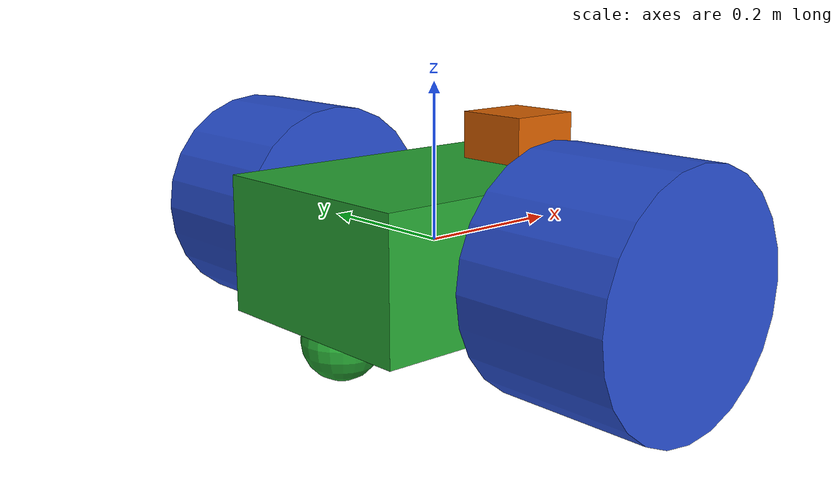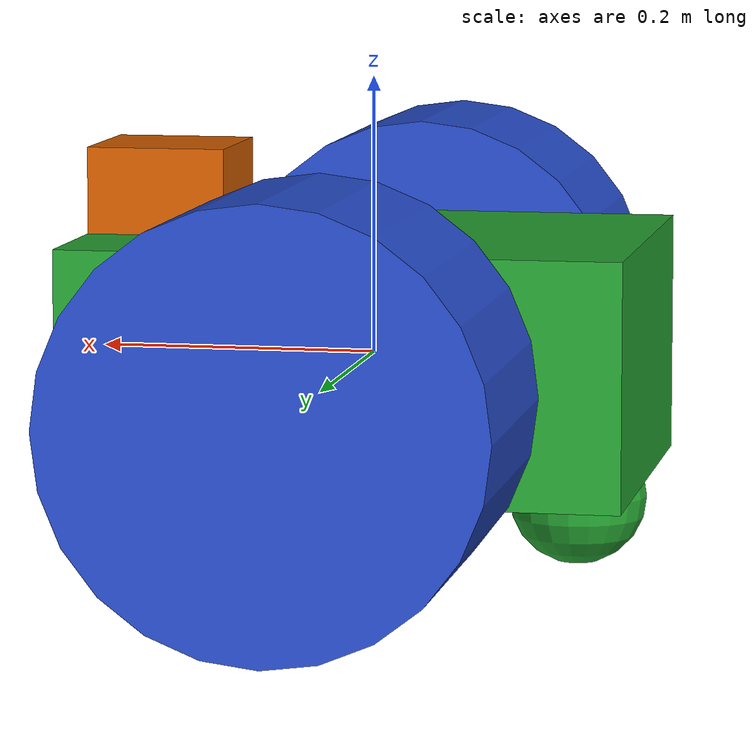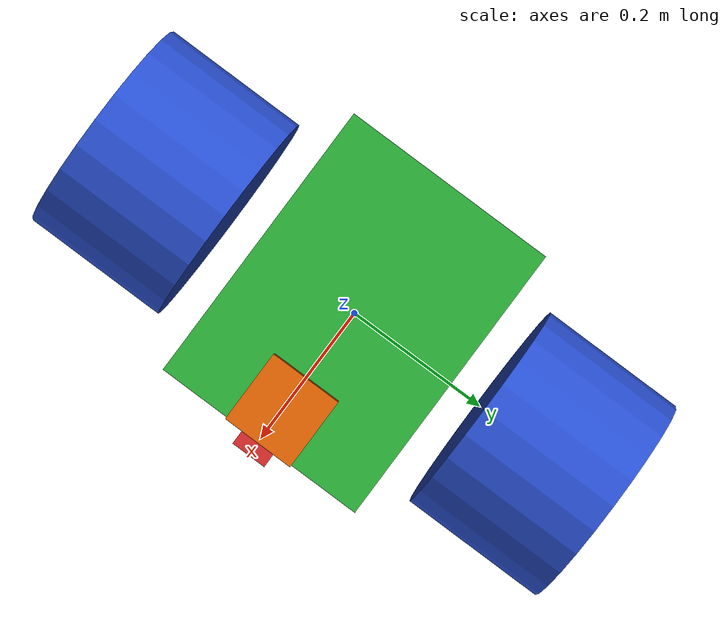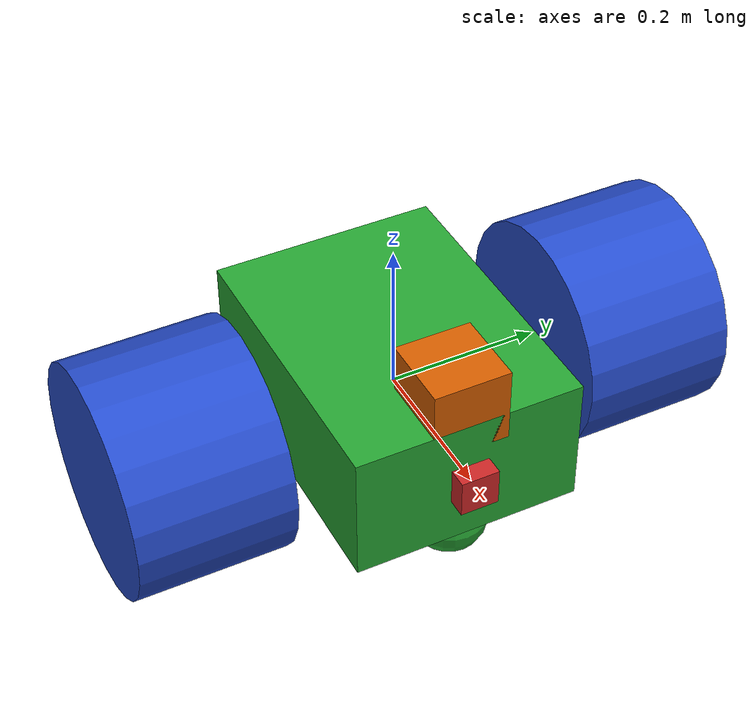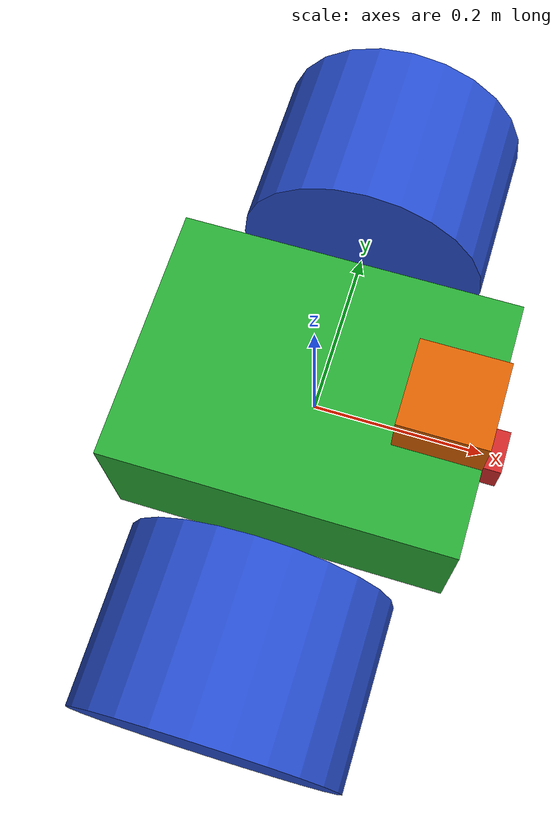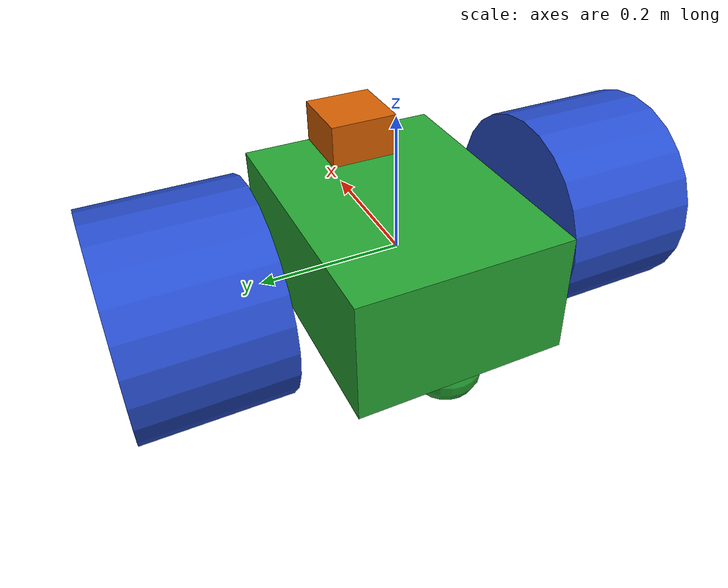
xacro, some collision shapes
<robot name="my_robot" xmlns:xacro="http://www.ros.org/wiki/xacro">
<xacro:include filename="$(find my_robot)/urdf/my_robot.gazebo" />

  <link name="robot_footprint"></link>

  <joint name="robot_footprint_joint" type="fixed">
    <origin xyz="0 0 0" rpy="0 0 0" />
    <parent link="robot_footprint"/>
    <child link="chassis" />
  </joint>

  <!-- Chassis Link -->
  <link name='chassis'>
    <pose>0 0 0.1 0 0 0</pose>

    <inertial>
      <mass value="15.0"/>
      <origin xyz="0.0 0 0" rpy=" 0 0 0"/>
      <inertia
          ixx="0.1" ixy="0" ixz="0"
          iyy="0.1" iyz="0"
          izz="0.1"
      />
    </inertial>

    <collision name='collision'>
      <origin xyz="0 0 0" rpy=" 0 0 0"/>
      <geometry>
        <box size=".4 .3 .175"/>
      </geometry>
    </collision>

    <visual name='chassis_visual'>
      <origin xyz="0 0 0" rpy=" 0 0 0"/>
      <geometry>
        <box size=".4 .3 .175"/>
      </geometry>
    </visual>

    <collision name='back_caster_collision'>
      <origin xyz="-0.15 0 -0.1" rpy=" 0 0 0"/>
      <geometry>
        <sphere radius="0.0499"/>
      </geometry>
    </collision>

    <visual name='back_caster_visual'>
      <origin xyz="-0.15 0 -0.1" rpy=" 0 0 0"/>
      <geometry>
        <sphere radius="0.05"/>
      </geometry>
    </visual>

    <collision name='front_caster_collision'>
      <origin xyz="0.15 0 -0.1" rpy=" 0 0 0"/>
      <geometry>
        <sphere radius="0.0499"/>
      </geometry>
    </collision>

    <visual name='front_caster_visual'>
      <origin xyz="0.15 0 -0.1" rpy=" 0 0 0"/>
      <geometry>
        <sphere radius="0.05"/>
      </geometry>
    </visual>

  </link>
  <gazebo reference="chassis">
    <material>Gazebo/Green</material>
  </gazebo>

  <!-- Left Wheel Joint -->
  <joint type="continuous" name="left_wheel_hinge">
    <origin xyz="0 0.30 0" rpy="0 0 0"/>
    <child link="left_wheel"/>
    <parent link="chassis"/>
    <axis xyz="0 1 0" rpy="0 0 0"/>
    <limit effort="10000" velocity="1000"/>
    <dynamics damping="1.0" friction="1.0"/>
  </joint>

  <!-- Left Wheel Link -->
  <link name='left_wheel'>
    <inertial>
      <mass value="5.0"/>
      <origin xyz="0.0 0 0" rpy=" 0 1.57 1.57"/>
      <inertia
          ixx="0.1" ixy="0" ixz="0"
          iyy="0.1" iyz="0"
          izz="0.1"
      />
    </inertial>

    <collision name='collision'>
      <origin xyz="0 0 0" rpy=" 0 1.57 1.57"/>
      <geometry>
        <cylinder radius='0.15' length='0.2'/>
      </geometry>
    </collision>

    <visual name='left_wheel_visual'>
      <origin xyz="0 0 0" rpy=" 0 1.57 1.57"/>
      <geometry>
        <cylinder radius='0.15' length='0.2'/>
      </geometry>
    </visual>

  </link>
  <gazebo reference="left_wheel">
    <material>Gazebo/Blue</material>
  </gazebo>

  <!-- Right Wheel Joint -->
  <joint type="continuous" name="right_wheel_hinge">
    <origin xyz="0 -0.30 0" rpy="0 0 0"/>
    <child link="right_wheel"/>
    <parent link="chassis"/>
    <axis xyz="0 1 0" rpy="0 0 0"/>
    <limit effort="10000" velocity="1000"/>
    <dynamics damping="1.0" friction="1.0"/>
  </joint>

  <!-- Right Wheel Link -->
  <link name='right_wheel'>
    <inertial>
      <mass value="5.0"/>
      <origin xyz="0.0 0 0" rpy=" 0 1.57 1.57"/>
      <inertia
          ixx="0.1" ixy="0" ixz="0"
          iyy="0.1" iyz="0"
          izz="0.1"
      />
    </inertial>

    <collision name='collision'>
      <origin xyz="0 0 0" rpy=" 0 1.57 1.57"/>
      <geometry>
        <cylinder radius='0.15' length='0.2'/>
      </geometry>
    </collision>

    <visual name='right_wheel_visual'>
      <origin xyz="0 0 0" rpy=" 0 1.57 1.57"/>
      <geometry>
        <cylinder radius='0.15' length='0.2'/>
      </geometry>
    </visual>

  </link>
  <gazebo reference="right_wheel">
    <material>Gazebo/Blue</material>
  </gazebo>

  <!-- Camera Joint -->
  <joint type="fixed" name="camera_joint">
    <origin xyz="0.2 0 0" rpy="0 0 0"/>
    <child link="camera"/>
    <parent link="chassis"/>
    <axis xyz="0 1 0"/>
  </joint>

  <!-- Camera Link -->
  <link name='camera'>
    <inertial>
      <mass value="0.1"/>
      <origin xyz="0 0 0" rpy=" 0 0 0"/>
      <inertia
          ixx="1e-6" ixy="0" ixz="0"
          iyy="1e-6" iyz="0"
          izz="1e-6"
      />
    </inertial>

    <collision name='collision'>
      <origin xyz="0 0 0" rpy=" 0 0 0"/>
      <geometry>
        <box size="0.05 0.05 0.05"/>
      </geometry>
    </collision>

    <visual name='chassis_visual'>
      <origin xyz="0 0 0" rpy=" 0 0 0"/>
      <geometry>
        <box size="0.05 0.05 0.05"/>
      </geometry>
    </visual>

  </link>
  <gazebo reference="camera">
    <material>Gazebo/Red</material>
  </gazebo>

  <!-- LiDAR Joint -->
  <joint type="fixed" name="hokuyo_joint">
    <origin xyz="0.15 0 .1" rpy="0 0 0"/>
    <child link="hokuyo"/>
    <parent link="chassis"/>
    <axis xyz="0 1 0"/>
  </joint>

  <!-- LiDAR Link -->
  <link name='hokuyo'>
    <origin xyz="0 0 0" rpy=" 0 0 0"/>
    <inertial>
      <mass value="1e-5"/>
      <inertia
          ixx="1e-6" ixy="0" ixz="0"
          iyy="1e-6" iyz="0"
          izz="1e-6"
      />
    </inertial>

    <collision name='collision'>
      <geometry>
        <box size="0.1 0.1 0.1"/>
      </geometry>
    </collision>

    <visual name='LiDAR_visual'>
      <geometry>
        <mesh filename="package://my_robot/meshes/hokuyo.dae"/>
      </geometry>
    </visual>
  </link>

</robot>
